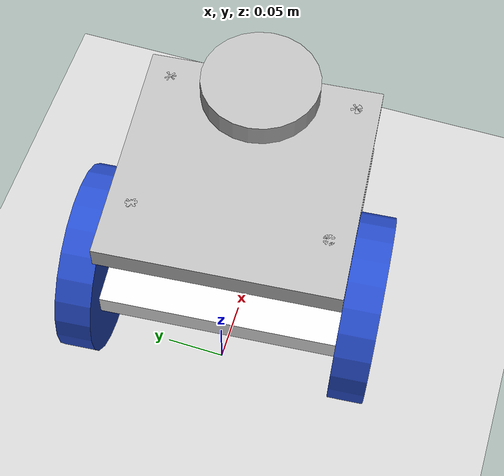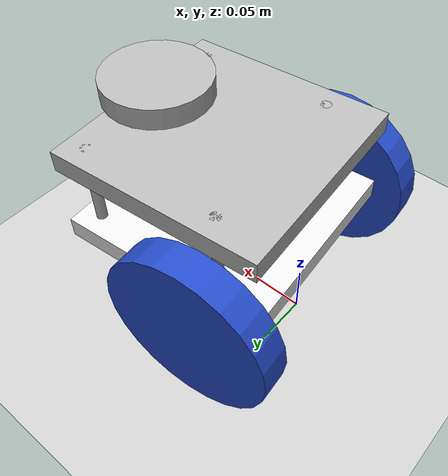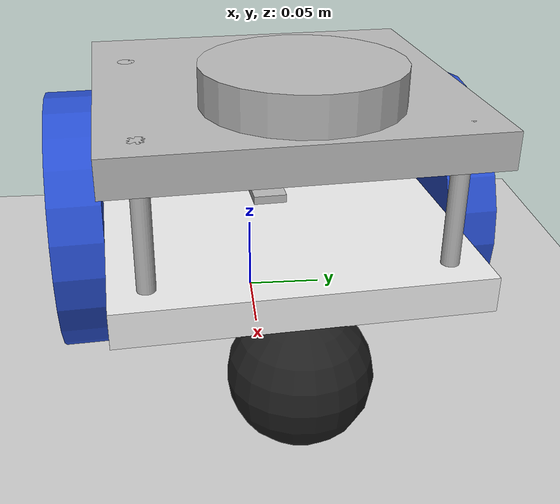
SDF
<sdf version="1.7">
 <world name="default">
  <light name="sun" type="directional">
   <pose>0 0 10 0 -0 0</pose>
   <diffuse>0.8 0.8 0.8 1</diffuse>
   <specular>0.2 0.2 0.2 1</specular>
   <attenuation>
    <range>1000</range>
    <constant>0.9</constant>
    <linear>0.01</linear>
    <quadratic>0.001</quadratic>
   </attenuation>
   <direction>-0.5 0.1 -0.9</direction>
   <spot><inner_angle>0</inner_angle><outer_angle>0</outer_angle><falloff>0</falloff></spot>
  </light>
  <model name="ground_plane">
   <static>1</static>
   <link name="link">
    <collision name="collision">
     <geometry><plane><normal>0 0 1</normal><size>100 100</size></plane></geometry>
     <surface><friction><ode><mu>100</mu><mu2>50</mu2></ode></friction></surface>
    </collision>
    <visual name="visual">
     <cast_shadows>0</cast_shadows>
     <geometry><plane><normal>0 0 1</normal><size>100 100</size></plane></geometry>
     <material>
      <script><uri>file://media/materials/scripts/gazebo.material</uri><name>Gazebo/Grey</name></script>
     </material>
    </visual>
   </link>
  </model>
  <gravity>0 0 -9.8</gravity>
  <magnetic_field>6e-06 2.3e-05 -4.2e-05</magnetic_field>
  <atmosphere type="adiabatic"/>
  <physics type="ode">
   <max_step_size>0.001</max_step_size>
   <real_time_factor>1</real_time_factor>
   <real_time_update_rate>1000</real_time_update_rate>
  </physics>
  <scene><ambient>0.4 0.4 0.4 1</ambient><background>0.7 0.7 0.7 1</background><shadows>1</shadows></scene>
  <audio><device>default</device></audio>
  <spherical_coordinates>
   <surface_model>EARTH_WGS84</surface_model>
   <latitude_deg>0</latitude_deg>
   <longitude_deg>0</longitude_deg>
   <elevation>0</elevation>
   <heading_deg>0</heading_deg>
  </spherical_coordinates>
  <model name="my_bot">
   <link name="base_link">
    <inertial>
     <pose>0.082719 0 0.037808 0 -0 0</pose>
     <mass>1.46</mass>
     <inertia>
      <ixx>0.00934224</ixx>
      <ixy>2.30231e-19</ixy>
      <ixz>0.000950699</ixz>
      <iyy>0.0102249</iyy>
      <iyz>1.19797e-19</iyz>
      <izz>0.00981571</izz>
     </inertia>
    </inertial>
    <collision name="base_link_fixed_joint_lump__chassis_collision">
     <pose>0.05 0 0.01 0 -0 0</pose>
     <geometry><box><size>0.2 0.2 0.02</size></box></geometry>
    </collision>
    <collision name="base_link_fixed_joint_lump__imu_link_collision_1">
     <pose>0.027 0 0.02 0 -0 0</pose>
     <geometry><box><size>0.03 0.02 0.01</size></box></geometry>
    </collision>
    <collision name="base_link_fixed_joint_lump__caster_wheel_collision_2">
     <pose>0.13 0 -0.04 0 -0 0</pose>
     <geometry><sphere><radius>0.04</radius></sphere></geometry>
     <surface><friction><ode><mu>0.001</mu><mu2>0.001</mu2></ode></friction></surface>
    </collision>
    <collision name="base_link_fixed_joint_lump__chassis1_collision_3">
     <pose>0.05 0 0.09 0 -0 0</pose>
     <geometry><box><size>0.2 0.2 0.02</size></box></geometry>
    </collision>
    <collision name="base_link_fixed_joint_lump__pole1_collision_4">
     <pose>0 0.08 0.05 0 -0 0</pose>
     <geometry><cylinder><length>0.1</length><radius>0.005</radius></cylinder></geometry>
    </collision>
    <collision name="base_link_fixed_joint_lump__pole2_collision_5">
     <pose>0 -0.08 0.05 0 -0 0</pose>
     <geometry><cylinder><length>0.1</length><radius>0.005</radius></cylinder></geometry>
    </collision>
    <collision name="base_link_fixed_joint_lump__pole3_collision_6">
     <pose>0.13 -0.08 0.05 0 -0 0</pose>
     <geometry><cylinder><length>0.1</length><radius>0.005</radius></cylinder></geometry>
    </collision>
    <collision name="base_link_fixed_joint_lump__pole4_collision_7">
     <pose>0.13 0.08 0.05 0 -0 0</pose>
     <geometry><cylinder><length>0.1</length><radius>0.005</radius></cylinder></geometry>
    </collision>
    <collision name="base_link_fixed_joint_lump__lidar_scanner_collision_8">
     <pose>0.12 0 0.12 0 -0 0</pose>
     <geometry><cylinder><length>0.02</length><radius>0.05</radius></cylinder></geometry>
    </collision>
    <visual name="base_link_fixed_joint_lump__chassis_visual">
     <pose>0.05 0 0.01 0 -0 0</pose>
     <geometry><box><size>0.2 0.2 0.02</size></box></geometry>
     <material>
      <script><name>Gazebo/white</name><uri>file://media/materials/scripts/gazebo.material</uri></script>
     </material>
    </visual>
    <visual name="base_link_fixed_joint_lump__imu_link_visual_1">
     <pose>0.027 0 0.02 0 -0 0</pose>
     <geometry><box><size>0.03 0.02 0.01</size></box></geometry>
    </visual>
    <visual name="base_link_fixed_joint_lump__caster_wheel_visual_2">
     <pose>0.13 0 -0.04 0 -0 0</pose>
     <geometry><sphere><radius>0.04</radius></sphere></geometry>
     <material>
      <script><name>Gazebo/Black</name><uri>file://media/materials/scripts/gazebo.material</uri></script>
     </material>
    </visual>
    <visual name="base_link_fixed_joint_lump__chassis1_visual_3">
     <pose>0.05 0 0.09 0 -0 0</pose>
     <geometry><box><size>0.2 0.2 0.02</size></box></geometry>
    </visual>
    <visual name="base_link_fixed_joint_lump__pole1_visual_4">
     <pose>0 0.08 0.05 0 -0 0</pose>
     <geometry><cylinder><length>0.1</length><radius>0.005</radius></cylinder></geometry>
    </visual>
    <visual name="base_link_fixed_joint_lump__pole2_visual_5">
     <pose>0 -0.08 0.05 0 -0 0</pose>
     <geometry><cylinder><length>0.1</length><radius>0.005</radius></cylinder></geometry>
    </visual>
    <visual name="base_link_fixed_joint_lump__pole3_visual_6">
     <pose>0.13 -0.08 0.05 0 -0 0</pose>
     <geometry><cylinder><length>0.1</length><radius>0.005</radius></cylinder></geometry>
    </visual>
    <visual name="base_link_fixed_joint_lump__pole4_visual_7">
     <pose>0.13 0.08 0.05 0 -0 0</pose>
     <geometry><cylinder><length>0.1</length><radius>0.005</radius></cylinder></geometry>
    </visual>
    <visual name="base_link_fixed_joint_lump__lidar_scanner_visual_8">
     <pose>0.12 0 0.12 0 -0 0</pose>
     <geometry><cylinder><length>0.02</length><radius>0.05</radius></cylinder></geometry>
     <material>
      <script><name>Gazebo/lidar_colcor</name><uri>file://media/materials/scripts/gazebo.material</uri></script>
     </material>
    </visual>
    <sensor name="imu_sensor" type="imu">
     <always_on>1</always_on>
     <update_rate>100</update_rate>
     <visualize>1</visualize>
     <topic>__default_topic__</topic>
     <plugin name="imu_plugin" filename="libgazebo_ros_imu_sensor.so">
      <topicName>imu</topicName>
      <bodyName>imu_link</bodyName>
      <updateRateHZ>10.0</updateRateHZ>
      <gaussianNoise>0.0</gaussianNoise>
      <xyzOffset>0 0 0</xyzOffset>
      <rpyOffset>0 0 0</rpyOffset>
      <frameName>imu_link</frameName>
      <initialOrientationAsReference>0</initialOrientationAsReference>
     </plugin>
     <pose>0.027 0 0.02 0 -0 0</pose>
    </sensor>
    <sensor name="laser" type="ray">
     <visualize>1</visualize>
     <update_rate>10</update_rate>
     <ray>
      <scan>
       <horizontal>
        <samples>180</samples>
        <min_angle>-3.14</min_angle>
        <max_angle>3.14</max_angle>
        <resolution>1</resolution>
       </horizontal>
       <vertical><samples>1</samples><min_angle>0</min_angle><max_angle>0</max_angle></vertical>
      </scan>
      <range><min>0.3</min><max>20</max></range>
     </ray>
     <plugin name="laser_controller" filename="libgazebo_ros_ray_sensor.so">
      <ros><remap>~/out:=scan</remap></ros>
      <output_type>sensor_msgs/LaserScan</output_type>
      <frame_name>laser_frame</frame_name>
     </plugin>
     <pose>0.12 0 0.12 0 -0 0</pose>
    </sensor>
   </link>
   <joint name="left_wheel_to_base_link" type="revolute">
    <pose relative_to="base_link">0 0.115 0 1.5708 -0 0</pose>
    <parent>base_link</parent>
    <child>left_wheel</child>
    <axis>
     <xyz>0 0 1</xyz>
     <limit><lower>-1e+16</lower><upper>1e+16</upper></limit>
     <dynamics><spring_reference>0</spring_reference><spring_stiffness>0</spring_stiffness></dynamics>
    </axis>
   </joint>
   <link name="left_wheel">
    <pose relative_to="left_wheel_to_base_link">0 0 0 0 -0 0</pose>
    <inertial>
     <mass>0.1</mass>
     <inertia>
      <ixx>0.0001675</ixx>
      <ixy>0</ixy>
      <ixz>0</ixz>
      <iyy>0.0001675</iyy>
      <iyz>0</iyz>
      <izz>0.00032</izz>
     </inertia>
    </inertial>
    <collision name="left_wheel_collision">
     <geometry><cylinder><length>0.03</length><radius>0.08</radius></cylinder></geometry>
    </collision>
    <visual name="left_wheel_visual">
     <geometry><cylinder><length>0.03</length><radius>0.08</radius></cylinder></geometry>
     <material>
      <script><name>Gazebo/Blue</name><uri>file://media/materials/scripts/gazebo.material</uri></script>
     </material>
    </visual>
   </link>
   <joint name="right_wheel_to_base_link" type="revolute">
    <pose relative_to="base_link">0 -0.115 0 -1.5708 0 0</pose>
    <parent>base_link</parent>
    <child>right_wheel</child>
    <axis>
     <xyz>0 0 -1</xyz>
     <limit><lower>-1e+16</lower><upper>1e+16</upper></limit>
     <dynamics><spring_reference>0</spring_reference><spring_stiffness>0</spring_stiffness></dynamics>
    </axis>
   </joint>
   <link name="right_wheel">
    <pose relative_to="right_wheel_to_base_link">0 0 0 0 -0 0</pose>
    <inertial>
     <mass>0.1</mass>
     <inertia>
      <ixx>0.0001675</ixx>
      <ixy>0</ixy>
      <ixz>0</ixz>
      <iyy>0.0001675</iyy>
      <iyz>0</iyz>
      <izz>0.00032</izz>
     </inertia>
    </inertial>
    <collision name="right_wheel_collision">
     <geometry><cylinder><length>0.03</length><radius>0.08</radius></cylinder></geometry>
    </collision>
    <visual name="right_wheel_visual">
     <geometry><cylinder><length>0.03</length><radius>0.08</radius></cylinder></geometry>
     <material>
      <script><name>Gazebo/Blue</name><uri>file://media/materials/scripts/gazebo.material</uri></script>
     </material>
    </visual>
   </link>
   <static>0</static>
   <plugin name="gazebo_ros2_control" filename="libgazebo_ros2_control.so">
    <parameters>/home/pohrselvan/ros2_ws/src/install/july_9/share/july_9/config/wheel_controller.yaml</parameters>
   </plugin>
   <pose>0.032137 0.00321 0.080001 2e-06 6e-06 0.088199</pose>
  </model>
 </world>
</sdf>
